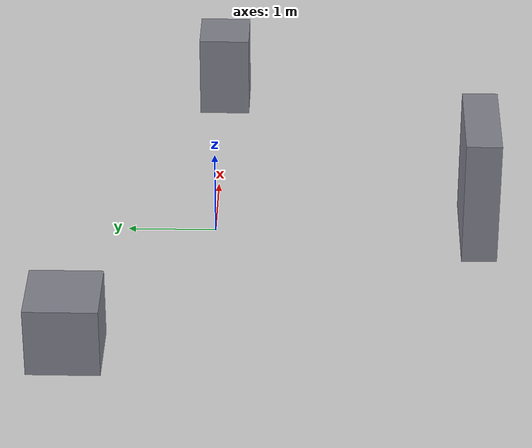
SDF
<?xml version="1.0" ?>
<sdf version="1.9">
  <world name="empty_ground">
    <physics name="1ms" type="ignored">
      <max_step_size>0.001</max_step_size>
      <real_time_factor>1.0</real_time_factor>
    </physics>
    <plugin filename="gz-sim-physics-system" name="gz::sim::systems::Physics"/>
    <plugin filename="gz-sim-user-commands-system" name="gz::sim::systems::UserCommands"/>
    <plugin filename="gz-sim-scene-broadcaster-system" name="gz::sim::systems::SceneBroadcaster"/>
    <plugin filename="gz-sim-sensors-system" name="gz::sim::systems::Sensors">
      <render_engine>ogre2</render_engine>
    </plugin>
    <plugin filename="gz-sim-imu-system" name="gz::sim::systems::Imu"/>

    <light type="directional" name="sun">
      <cast_shadows>true</cast_shadows>
      <pose>0 0 10 0 0 0</pose>
      <diffuse>0.8 0.8 0.8 1</diffuse>
      <specular>0.2 0.2 0.2 1</specular>
      <direction>-0.5 0.1 -0.9</direction>
    </light>

    <model name="ground_plane">
      <static>true</static>
      <link name="link">
        <collision name="collision">
          <geometry><plane><normal>0 0 1</normal><size>100 100</size></plane></geometry>
          <surface>
            <friction>
              <ode><mu>1.5</mu><mu2>1.5</mu2></ode>
              <torsional><coefficient>0.0</coefficient></torsional>
            </friction>
          </surface>
        </collision>
        <visual name="visual">
          <geometry><plane><normal>0 0 1</normal><size>100 100</size></plane></geometry>
          <material>
            <ambient>0.8 0.8 0.8 1</ambient>
            <diffuse>0.8 0.8 0.8 1</diffuse>
          </material>
        </visual>
      </link>
    </model>

    <model name="BoxA">
      <static>true</static>
      <pose>3.0 0.0 0.5 0 0 0</pose>
      <link name="link">
        <collision name="collision">
          <geometry><box><size>0.6 0.6 1.0</size></box></geometry>
        </collision>
        <visual name="visual">
          <geometry><box><size>0.6 0.6 1.0</size></box></geometry>
          <material><ambient>0.4 0.4 0.45 1</ambient><diffuse>0.5 0.5 0.55 1</diffuse></material>
        </visual>
      </link>
    </model>

    <model name="BoxB">
      <static>true</static>
      <pose>-2.5 1.5 0.4 0 0 0</pose>
      <link name="link">
        <collision name="collision">
          <geometry><box><size>0.8 0.8 0.8</size></box></geometry>
        </collision>
        <visual name="visual">
          <geometry><box><size>0.8 0.8 0.8</size></box></geometry>
          <material><ambient>0.4 0.4 0.45 1</ambient><diffuse>0.5 0.5 0.55 1</diffuse></material>
        </visual>
      </link>
    </model>

    <model name="BoxC">
      <static>true</static>
      <pose>0.0 -3.0 0.75 0 0 0</pose>
      <link name="link">
        <collision name="collision">
          <geometry><box><size>1.2 0.4 1.5</size></box></geometry>
        </collision>
        <visual name="visual">
          <geometry><box><size>1.2 0.4 1.5</size></box></geometry>
          <material><ambient>0.4 0.4 0.45 1</ambient><diffuse>0.5 0.5 0.55 1</diffuse></material>
        </visual>
      </link>
    </model>

  </world>
</sdf>
